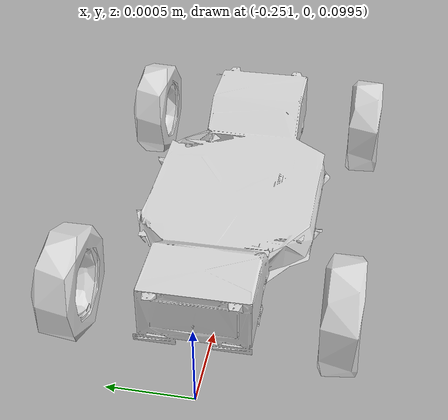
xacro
<?xml version="1.0"?>
<robot xmlns:xacro="http://ros.org/wiki/xacro">

  <!-- load parameter -->
  <xacro:property name="vehicle_info" value="${xacro.load_yaml('$(find pixkit_description)/config/vehicle_info.param.yaml')}"/>

  <!-- vehicle body -->
  <link name="base_link">
    <visual>
      <origin xyz="-0.25 0.0 0.1" rpy="0 0 ${pi/2.0}"/>
      <geometry>
        <mesh filename="package://pixkit_description/mesh/hooke.dae" scale="0.001 0.001 0.001"/>
      </geometry>
    </visual>
  </link>

</robot>
